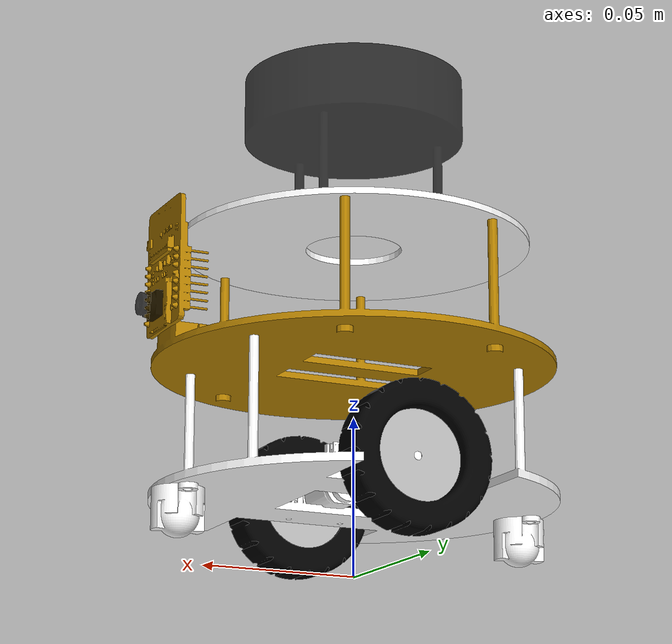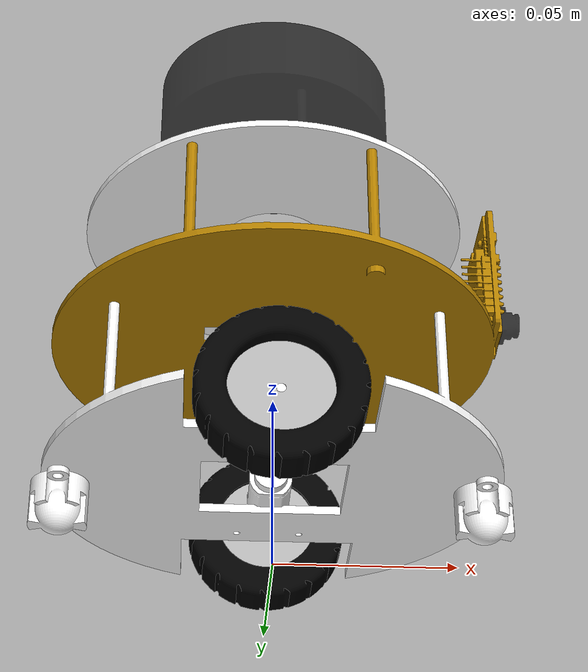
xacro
<?xml version="1.0" ?>
<robot name="tinyturtle" xmlns:xacro="http://www.ros.org/wiki/xacro">

<xacro:include filename="$(find tinyturtle_description)/urdf/materials.xacro" />
<xacro:include filename="$(find tinyturtle_description)/urdf/tinyturtle.trans" />

<!-- adding separate files for gazebo -->

<xacro:include filename="$(find tinyturtle_description)/gazebo/materials.gazebo" />
<xacro:include filename="$(find tinyturtle_description)/gazebo/physics.gazebo" />
<xacro:include filename="$(find tinyturtle_description)/gazebo/plugins.gazebo" />

<!-- base link -->
<link name="base_link">
  <inertial>
    <origin xyz="-3.8884077348068694e-05 4.385143531120217e-10 0.025971334122837374" rpy="0 0 0"/>
    <mass value="0.029830453519326734"/>
    <inertia ixx="2e-05" iyy="3.5e-05" izz="5.3e-05" ixy="-0.0" iyz="0.0" ixz="-0.0"/>
  </inertial>
  <visual>
    <origin xyz="0 0 0" rpy="0 0 0"/>
    <geometry>
      <mesh filename="file://$(find tinyturtle_description)/meshes/base_link.stl" scale="0.001 0.001 0.001"/>
    </geometry>
    <material name="white"/>
  </visual>
  <collision>
    <origin xyz="0 0 0" rpy="0 0 0"/>
    <geometry>
      <mesh filename="file://$(find tinyturtle_description)/meshes/base_link.stl" scale="0.001 0.001 0.001"/>
    </geometry>
  </collision>
</link>

<link name="mid_station_1">
  <inertial>
    <origin xyz="-0.03587245502398586 0.025261333701753666 0.0027084611106621" rpy="0 0 0"/>
    <mass value="0.040353779002592106"/>
    <inertia ixx="4.3e-05" iyy="5.9e-05" izz="9.4e-05" ixy="0.0" iyz="-0.0" ixz="-6e-06"/>
  </inertial>
  <visual>
    <origin xyz="-0.044939 0.025166 -0.067" rpy="0 0 0"/>
    <geometry>
      <mesh filename="file://$(find tinyturtle_description)/meshes/mid_station_1.stl" scale="0.001 0.001 0.001"/>
    </geometry>
    <material name="gold"/>
  </visual>
  <collision>
    <origin xyz="-0.044939 0.025166 -0.067" rpy="0 0 0"/>
    <geometry>
      <mesh filename="file://$(find tinyturtle_description)/meshes/mid_station_1.stl" scale="0.001 0.001 0.001"/>
    </geometry>
  </collision>
</link>

<link name="top_station_1">
  <inertial>
    <origin xyz="-0.0254615429776155 0.04636813846946754 -0.0009623973048854956" rpy="0 0 0"/>
    <mass value="0.01951205659450281"/>
    <inertia ixx="1.6e-05" iyy="1.6e-05" izz="3.2e-05" ixy="0.0" iyz="-0.0" ixz="0.0"/>
  </inertial>
  <visual>
    <origin xyz="-0.025097 0.045915 -0.107" rpy="0 0 0"/>
    <geometry>
      <mesh filename="file://$(find tinyturtle_description)/meshes/top_station_1.stl" scale="0.001 0.001 0.001"/>
    </geometry>
    <material name="white"/>
  </visual>
  <collision>
    <origin xyz="-0.025097 0.045915 -0.107" rpy="0 0 0"/>
    <geometry>
      <mesh filename="file://$(find tinyturtle_description)/meshes/top_station_1.stl" scale="0.001 0.001 0.001"/>
    </geometry>
  </collision>
</link>

<link name="left_wheel_1">
  <inertial>
    <origin xyz="-2.1565797536785204e-07 -0.0034995370293343583 4.050121014675945e-07" rpy="0 0 0"/>
    <mass value="0.004915556649893954"/>
    <inertia ixx="0.0" iyy="0.0" izz="0.0" ixy="0.0" iyz="0.0" ixz="0.0"/>
  </inertial>
  <visual>
    <origin xyz="-3.8e-05 -0.043329 -0.029384" rpy="0 0 0"/>
    <geometry>
      <mesh filename="file://$(find tinyturtle_description)/meshes/left_wheel_1.stl" scale="0.001 0.001 0.001"/>
    </geometry>
    <material name="silver"/>
  </visual>
  <collision>
    <origin xyz="-3.8e-05 -0.043329 -0.029384" rpy="0 0 0"/>
    <geometry>
      <mesh filename="file://$(find tinyturtle_description)/meshes/left_wheel_1.stl" scale="0.001 0.001 0.001"/>
    </geometry>
  </collision>
</link>

<link name="right_wheel_1">
  <inertial>
    <origin xyz="-2.1565797538000865e-07 0.0034995370293343583 4.050121014537167e-07" rpy="0 0 0"/>
    <mass value="0.0049155566498939535"/>
    <inertia ixx="0.0" iyy="0.0" izz="0.0" ixy="-0.0" iyz="-0.0" ixz="0.0"/>
  </inertial>
  <visual>
    <origin xyz="-3.8e-05 0.043329 -0.029384" rpy="0 0 0"/>
    <geometry>
      <mesh filename="file://$(find tinyturtle_description)/meshes/right_wheel_1.stl" scale="0.001 0.001 0.001"/>
    </geometry>
    <material name="silver"/>
  </visual>
  <collision>
    <origin xyz="-3.8e-05 0.043329 -0.029384" rpy="0 0 0"/>
    <geometry>
      <mesh filename="file://$(find tinyturtle_description)/meshes/right_wheel_1.stl" scale="0.001 0.001 0.001"/>
    </geometry>
  </collision>
</link>

<link name="left_tire_1">
  <inertial>
    <origin xyz="-0.00015031040641454374 -0.0015382263030908963 -4.7329059971526477e-07" rpy="0 0 0"/>
    <mass value="0.014831585214886022"/>
    <inertia ixx="3e-06" iyy="5e-06" izz="3e-06" ixy="-0.0" iyz="-0.0" ixz="0.0"/>
  </inertial>
  <visual>
    <origin xyz="-0.000188 -0.043329 -0.029385" rpy="0 0 0"/>
    <geometry>
      <mesh filename="file://$(find tinyturtle_description)/meshes/left_tire_1.stl" scale="0.001 0.001 0.001"/>
    </geometry>
    <material name="black"/>
  </visual>
  <collision>
    <origin xyz="-0.000188 -0.043329 -0.029385" rpy="0 0 0"/>
    <geometry>
      <mesh filename="file://$(find tinyturtle_description)/meshes/left_tire_1.stl" scale="0.001 0.001 0.001"/>
    </geometry>
  </collision>
</link>

<link name="right_tire_1">
  <inertial>
    <origin xyz="-0.0001503119344348377 0.0015382233794013697 -4.731892769803403e-07" rpy="0 0 0"/>
    <mass value="0.014831595637485923"/>
    <inertia ixx="3e-06" iyy="5e-06" izz="3e-06" ixy="-0.0" iyz="-0.0" ixz="0.0"/>
  </inertial>
  <visual>
    <origin xyz="-0.000188 0.043329 -0.029385" rpy="0 0 0"/>
    <geometry>
      <mesh filename="file://$(find tinyturtle_description)/meshes/right_tire_1.stl" scale="0.001 0.001 0.001"/>
    </geometry>
    <material name="black"/>
  </visual>
  <collision>
    <origin xyz="-0.000188 0.043329 -0.029385" rpy="0 0 0"/>
    <geometry>
      <mesh filename="file://$(find tinyturtle_description)/meshes/right_tire_1.stl" scale="0.001 0.001 0.001"/>
    </geometry>
  </collision>
</link>

<link name="front_caster_1">
  <inertial>
    <origin xyz="-0.00025481119581895195 0.009066078054469625 -0.008819545621607142" rpy="0 0 0"/>
    <mass value="0.01588977533199715"/>
    <inertia ixx="0.0" iyy="0.0" izz="0.0" ixy="-0.0" iyz="0.0" ixz="-0.0"/>
  </inertial>
  <visual>
    <origin xyz="-0.0585 0.009 -0.025" rpy="0 0 0"/>
    <geometry>
      <mesh filename="file://$(find tinyturtle_description)/meshes/front_caster_1.stl" scale="0.001 0.001 0.001"/>
    </geometry>
    <material name="white"/>
  </visual>
  <collision>
    <origin xyz="-0.0585 0.009 -0.025" rpy="0 0 0"/>
    <geometry>
      <mesh filename="file://$(find tinyturtle_description)/meshes/front_caster_1.stl" scale="0.001 0.001 0.001"/>
    </geometry>
  </collision>
</link>

<link name="rear_caster_1">
  <inertial>
    <origin xyz="0.000254811195818945 0.009066078054469623 -0.008819545621607142" rpy="0 0 0"/>
    <mass value="0.01588977533199714"/>
    <inertia ixx="0.0" iyy="0.0" izz="0.0" ixy="0.0" iyz="0.0" ixz="0.0"/>
  </inertial>
  <visual>
    <origin xyz="0.0585 0.009 -0.025" rpy="0 0 0"/>
    <geometry>
      <mesh filename="file://$(find tinyturtle_description)/meshes/rear_caster_1.stl" scale="0.001 0.001 0.001"/>
    </geometry>
    <material name="white"/>
  </visual>
  <collision>
    <origin xyz="0.0585 0.009 -0.025" rpy="0 0 0"/>
    <geometry>
      <mesh filename="file://$(find tinyturtle_description)/meshes/rear_caster_1.stl" scale="0.001 0.001 0.001"/>
    </geometry>
  </collision>
</link>

<link name="camera_1">
  <inertial>
    <origin xyz="0.002636817104400224 2.935679343227856e-09 8.584806467232253e-07" rpy="0 0 0"/>
    <mass value="0.0018171422011454747"/>
    <inertia ixx="0.0" iyy="0.0" izz="0.0" ixy="0.0" iyz="0.0" ixz="0.0"/>
  </inertial>
  <visual>
    <origin xyz="-0.066 -0.000151 -0.078163" rpy="0 0 0"/>
    <geometry>
      <mesh filename="file://$(find tinyturtle_description)/meshes/camera_1.stl" scale="0.001 0.001 0.001"/>
    </geometry>
    <material name="black_transparent"/>
  </visual>
  <collision>
    <origin xyz="-0.066 -0.000151 -0.078163" rpy="0 0 0"/>
    <geometry>
      <mesh filename="file://$(find tinyturtle_description)/meshes/camera_1.stl" scale="0.001 0.001 0.001"/>
    </geometry>
  </collision>
</link>

<!-- comment this part if you do not want the LiDAR -->
<link name="lidar_link_1">
  <inertial>
    <origin xyz="4.8200504761674874e-05 -1.3306782051679926e-05 0.045385449064346814" rpy="0 0 0"/>
    <mass value="0.4709889042322631"/>
    <inertia ixx="0.000165" iyy="0.000165" izz="0.000292" ixy="-0.0" iyz="0.0" ixz="-0.0"/>
  </inertial>
  <visual>
    <origin xyz="-0.0 -0.0 -0.106" rpy="0 0 0"/>
    <geometry>
      <mesh filename="file://$(find tinyturtle_description)/meshes/lidar_link_1.stl" scale="0.001 0.001 0.001"/>
    </geometry>
    <material name="black_transparent"/>
  </visual>
  <collision>
    <origin xyz="-0.0 -0.0 -0.106" rpy="0 0 0"/>
    <geometry>
      <mesh filename="file://$(find tinyturtle_description)/meshes/lidar_link_1.stl" scale="0.001 0.001 0.001"/>
    </geometry>
  </collision>
</link>

<!-- joints -->
<joint name="base2mid" type="fixed">
  <origin xyz="0.044939 -0.025166 0.067" rpy="0 0 0"/>
  <parent link="base_link"/>
  <child link="mid_station_1"/>
</joint>

<joint name="mid2top" type="fixed">
  <origin xyz="-0.019842 -0.020749 0.04" rpy="0 0 0"/>
  <parent link="mid_station_1"/>
  <child link="top_station_1"/>
</joint>

<joint name="left_motor" type="continuous">
  <origin xyz="3.8e-05 0.043329 0.029384" rpy="0 0 0"/>
  <parent link="base_link"/>
  <child link="left_wheel_1"/>
  <axis xyz="-0.0 1.0 -0.0"/>
</joint>

<joint name="right_motor" type="continuous">
  <origin xyz="3.8e-05 -0.043329 0.029384" rpy="0 0 0"/>
  <parent link="base_link"/>
  <child link="right_wheel_1"/>
  <axis xyz="-0.0 1.0 -0.0"/>
</joint>

<joint name="left_wheel2tyre" type="fixed">
  <origin xyz="0.00015 0.0 1e-06" rpy="0 0 0"/>
  <parent link="left_wheel_1"/>
  <child link="left_tire_1"/>
</joint>

<joint name="right_wheel2tyre" type="fixed">
  <origin xyz="0.00015 0.0 1e-06" rpy="0 0 0"/>
  <parent link="right_wheel_1"/>
  <child link="right_tire_1"/>
</joint>

<joint name="base2caster1" type="fixed">
  <origin xyz="0.0585 -0.009 0.025" rpy="0 0 0"/>
  <parent link="base_link"/>
  <child link="front_caster_1"/>
</joint>

<joint name="base2caster2" type="fixed">
  <origin xyz="-0.0585 -0.009 0.025" rpy="0 0 0"/>
  <parent link="base_link"/>
  <child link="rear_caster_1"/>
</joint>

<joint name="camera_joint" type="fixed">
  <origin xyz="0.021061 0.025317 0.011163" rpy="0 0 0"/>
  <parent link="mid_station_1"/>
  <child link="camera_1"/>
</joint>

<joint name="lidar_joint" type="fixed">
  <origin xyz="-0.025097 0.045915 -0.001" rpy="0 0 0"/>
  <parent link="top_station_1"/>
  <child link="lidar_link_1"/>
</joint>

</robot>

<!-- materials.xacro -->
<robot name="tinyturtle" xmlns:xacro="http://www.ros.org/wiki/xacro" >

<material name="silver">
  <color rgba="0.700 0.700 0.700 1.000"/>
</material>

<material name="white">
  <color rgba="1.000 1.000 1.000 1.000"/>
</material>

<material name="black">
  <color rgba="0.000 0.000 0.000 1.000"/>
</material>

<material name="gold">
  <color rgba="0.700 0.500 0.000 1.000"/>
</material>

<material name="black_transparent">
  <color rgba="0.000 0.000 0.000 0.700"/>
</material>

</robot>

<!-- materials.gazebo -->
<robot name="tinyturtle" xmlns:xacro="http://www.ros.org/wiki/xacro" >

<xacro:property name="body_color" value="Gazebo/Silver" />
<xacro:property name="base_link_color" value="Gazebo/White" />
<xacro:property name="lidar_camera_color" value="Gazebo/BlackTransparent" />
<xacro:property name="tyre_color" value="Gazebo/Black" />
<xacro:property name="mid_station_color" value="Gazebo/Gold" />

<gazebo reference="base_link">
  <material>${base_link_color}</material>
</gazebo>

<gazebo reference="mid_station_1">
  <material>${mid_station_color}</material>
</gazebo>

<gazebo reference="top_station_1">
  <material>${base_link_color}</material>
</gazebo>

<gazebo reference="left_wheel_1">
  <material>${body_color}</material>
</gazebo>

<gazebo reference="right_wheel_1">
  <material>${body_color}</material>
</gazebo>

<gazebo reference="left_tire_1">
  <material>${tyre_color}</material>
</gazebo>

<gazebo reference="right_tire_1">
  <material>${tyre_color}</material>
</gazebo>

<gazebo reference="front_caster_1">
  <material>${body_color}</material>
</gazebo>

<gazebo reference="rear_caster_1">
  <material>${body_color}</material>
</gazebo>

<gazebo reference="camera_1">
  <material>${lidar_camera_color}</material>
</gazebo>

<gazebo reference="lidar_link_1">
  <material>${lidar_camera_color}</material>
</gazebo>

</robot>
